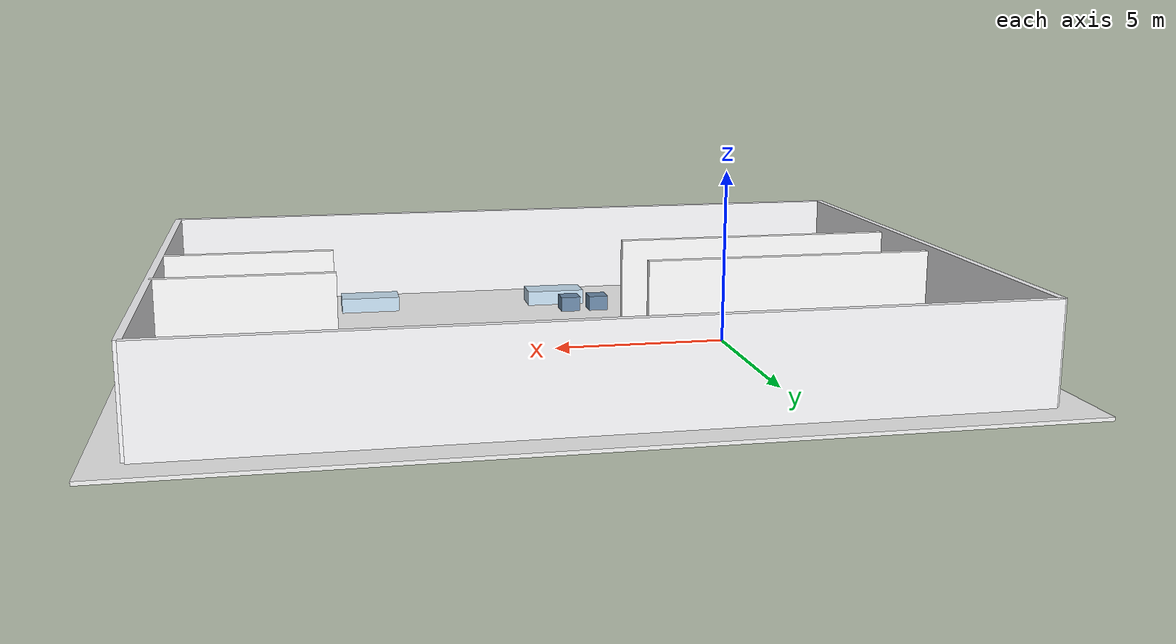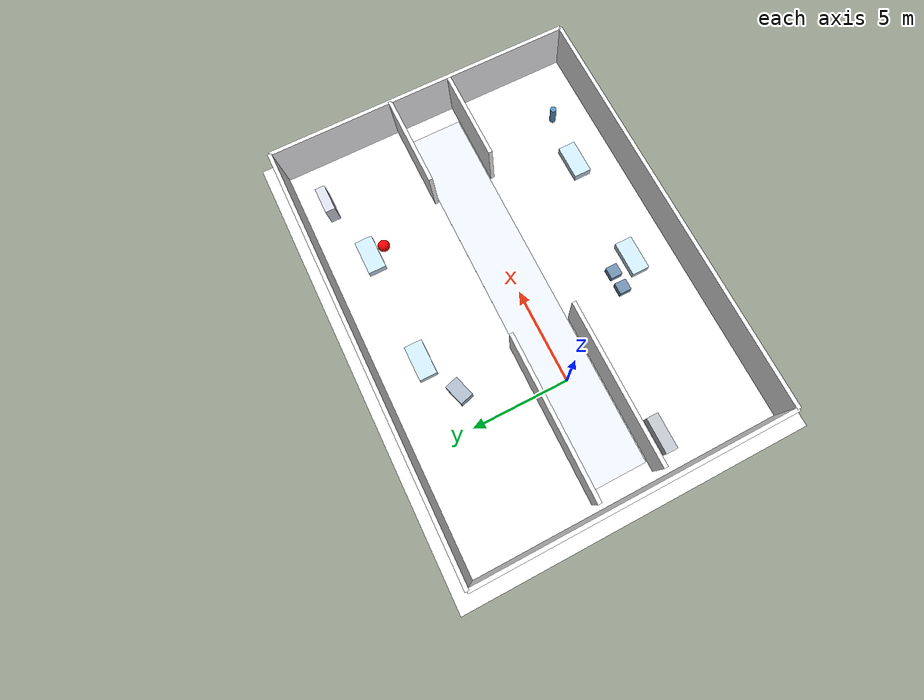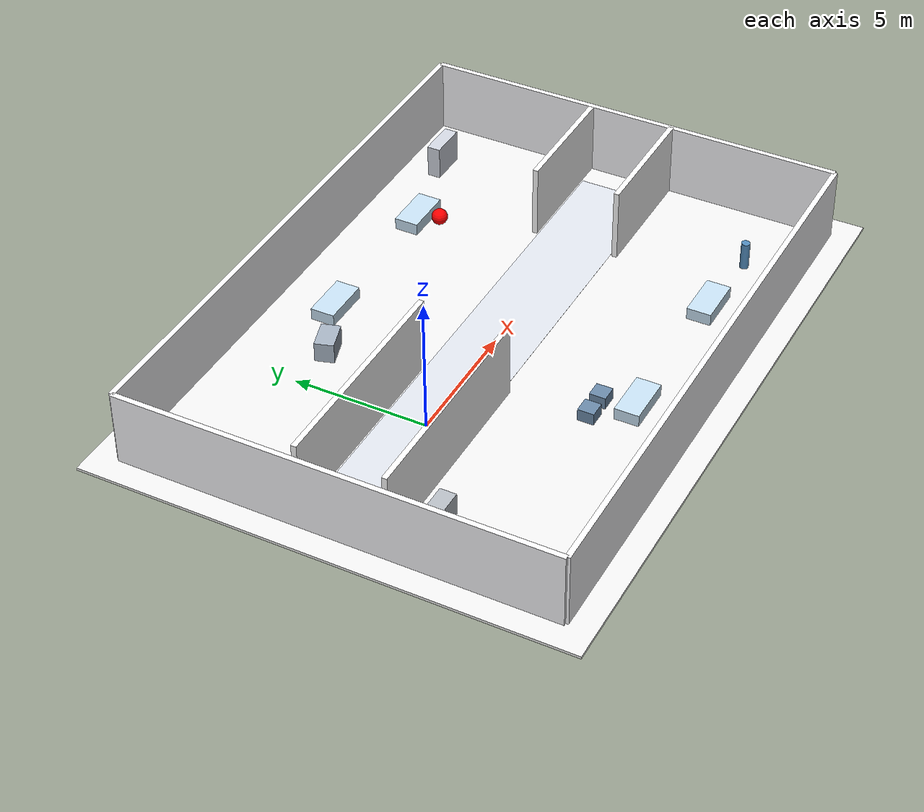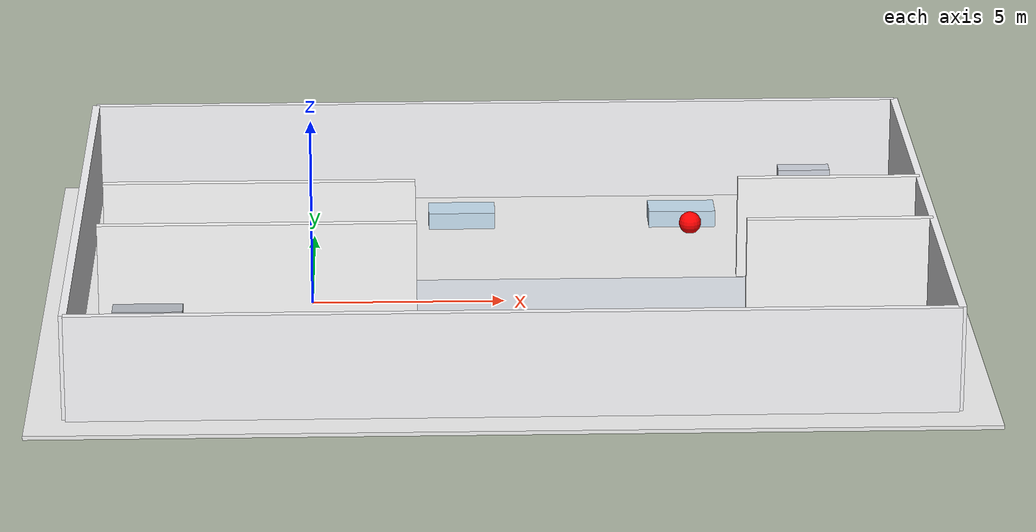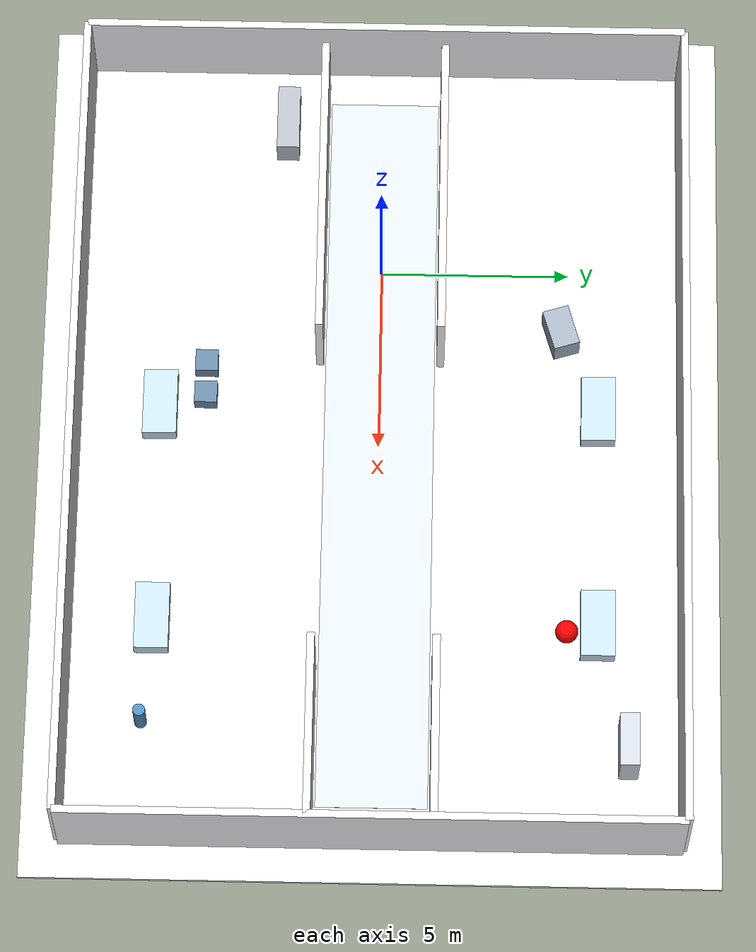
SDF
<?xml version="1.0"?>
<sdf version="1.9">
  <world name="hospital">

    <plugin
      filename="gz-sim-physics-system"
      name="gz::sim::systems::Physics"/>
    <plugin
      filename="gz-sim-user-commands-system"
      name="gz::sim::systems::UserCommands"/>
    <plugin
      filename="gz-sim-scene-broadcaster-system"
      name="gz::sim::systems::SceneBroadcaster"/>
    <plugin
      filename="gz-sim-sensors-system"
      name="gz::sim::systems::Sensors">
      <render_engine>ogre2</render_engine>
    </plugin>

    <gravity>0 0 -9.81</gravity>

    <scene>
      <ambient>0.72 0.72 0.72 1</ambient>
      <background>0.96 0.97 0.99 1</background>
      <shadows>true</shadows>
    </scene>

    <physics name="default_physics" type="ode">
      <max_step_size>0.001</max_step_size>
      <real_time_factor>1.0</real_time_factor>
      <real_time_update_rate>1000</real_time_update_rate>
    </physics>

    <light type="directional" name="sun">
      <cast_shadows>true</cast_shadows>
      <pose>0 0 12 0 0 0</pose>
      <diffuse>0.95 0.95 0.95 1</diffuse>
      <specular>0.2 0.2 0.2 1</specular>
      <direction>-0.25 0.15 -1</direction>
    </light>

    <model name="hospital_floor">
      <static>true</static>
      <pose>5 0 0 0 0 0</pose>
      <link name="link">
        <collision name="col">
          <geometry>
            <box><size>24 18 0.1</size></box>
          </geometry>
        </collision>
        <visual name="vis">
          <geometry>
            <box><size>24 18 0.1</size></box>
          </geometry>
          <material>
            <ambient>0.92 0.92 0.92 1</ambient>
            <diffuse>0.95 0.95 0.95 1</diffuse>
          </material>
        </visual>
      </link>
    </model>

    <model name="corridor_strip">
      <static>true</static>
      <pose>5 0 0.051 0 0 0</pose>
      <link name="link">
        <visual name="vis">
          <geometry>
            <box><size>20 2.9 0.01</size></box>
          </geometry>
          <material>
            <ambient>0.88 0.90 0.93 1</ambient>
            <diffuse>0.88 0.90 0.93 1</diffuse>
          </material>
        </visual>
      </link>
    </model>

    <!-- Outer shell -->
    <model name="wall_west"><static>true</static><pose>-6 0 1.4 0 0 0</pose>
      <link name="link"><collision name="c"><geometry><box><size>0.2 16 2.8</size></box></geometry></collision>
      <visual name="v"><geometry><box><size>0.2 16 2.8</size></box></geometry><material><ambient>0.98 0.98 0.99 1</ambient><diffuse>0.98 0.98 0.99 1</diffuse></material></visual></link>
    </model>
    <model name="wall_east"><static>true</static><pose>16 0 1.4 0 0 0</pose>
      <link name="link"><collision name="c"><geometry><box><size>0.2 16 2.8</size></box></geometry></collision>
      <visual name="v"><geometry><box><size>0.2 16 2.8</size></box></geometry><material><ambient>0.98 0.98 0.99 1</ambient><diffuse>0.98 0.98 0.99 1</diffuse></material></visual></link>
    </model>
    <model name="wall_north"><static>true</static><pose>5 8 1.4 0 0 0</pose>
      <link name="link"><collision name="c"><geometry><box><size>22 0.2 2.8</size></box></geometry></collision>
      <visual name="v"><geometry><box><size>22 0.2 2.8</size></box></geometry><material><ambient>0.98 0.98 0.99 1</ambient><diffuse>0.98 0.98 0.99 1</diffuse></material></visual></link>
    </model>
    <model name="wall_south"><static>true</static><pose>5 -8 1.4 0 0 0</pose>
      <link name="link"><collision name="c"><geometry><box><size>22 0.2 2.8</size></box></geometry></collision>
      <visual name="v"><geometry><box><size>22 0.2 2.8</size></box></geometry><material><ambient>0.98 0.98 0.99 1</ambient><diffuse>0.98 0.98 0.99 1</diffuse></material></visual></link>
    </model>

    <!-- Corridor north wall with wide door gaps at x=4 and x=10 -->
    <model name="north_seg_1"><static>true</static><pose>-1.4 1.6 1.4 0 0 0</pose>
      <link name="link"><collision name="c"><geometry><box><size>8.2 0.2 2.8</size></box></geometry></collision>
      <visual name="v"><geometry><box><size>8.2 0.2 2.8</size></box></geometry><material><ambient>1 1 1 1</ambient><diffuse>1 1 1 1</diffuse></material></visual></link>
    </model>
    <model name="north_seg_3"><static>true</static><pose>13.6 1.6 1.4 0 0 0</pose>
      <link name="link"><collision name="c"><geometry><box><size>4.8 0.2 2.8</size></box></geometry></collision>
      <visual name="v"><geometry><box><size>4.8 0.2 2.8</size></box></geometry><material><ambient>1 1 1 1</ambient><diffuse>1 1 1 1</diffuse></material></visual></link>
    </model>

    <!-- Corridor south wall with wide door gaps at x=4 and x=10 -->
    <model name="south_seg_1"><static>true</static><pose>-1.4 -1.6 1.4 0 0 0</pose>
      <link name="link"><collision name="c"><geometry><box><size>8.2 0.2 2.8</size></box></geometry></collision>
      <visual name="v"><geometry><box><size>8.2 0.2 2.8</size></box></geometry><material><ambient>1 1 1 1</ambient><diffuse>1 1 1 1</diffuse></material></visual></link>
    </model>
    <model name="south_seg_3"><static>true</static><pose>13.6 -1.6 1.4 0 0 0</pose>
      <link name="link"><collision name="c"><geometry><box><size>4.8 0.2 2.8</size></box></geometry></collision>
      <visual name="v"><geometry><box><size>4.8 0.2 2.8</size></box></geometry><material><ambient>1 1 1 1</ambient><diffuse>1 1 1 1</diffuse></material></visual></link>
    </model>

    <!-- Room separators removed to merge 4 rooms into 2 larger rooms -->

    <!-- Basic hospital furniture (visual realism) -->
    <model name="bed_n1"><static>true</static><pose>4.0 5.8 0.25 0 0 0</pose>
      <link name="link">
        <collision name="c"><geometry><box><size>1.8 0.9 0.5</size></box></geometry></collision>
        <visual name="v"><geometry><box><size>1.8 0.9 0.5</size></box></geometry><material><ambient>0.78 0.88 0.95 1</ambient><diffuse>0.78 0.88 0.95 1</diffuse></material></visual>
      </link>
    </model>
    <model name="bed_n2"><static>true</static><pose>10.0 5.8 0.25 0 0 0</pose>
      <link name="link">
        <collision name="c"><geometry><box><size>1.8 0.9 0.5</size></box></geometry></collision>
        <visual name="v"><geometry><box><size>1.8 0.9 0.5</size></box></geometry><material><ambient>0.78 0.88 0.95 1</ambient><diffuse>0.78 0.88 0.95 1</diffuse></material></visual>
      </link>
    </model>
    <model name="bed_s1"><static>true</static><pose>4.0 -5.8 0.25 0 0 0</pose>
      <link name="link">
        <collision name="c"><geometry><box><size>1.8 0.9 0.5</size></box></geometry></collision>
        <visual name="v"><geometry><box><size>1.8 0.9 0.5</size></box></geometry><material><ambient>0.78 0.88 0.95 1</ambient><diffuse>0.78 0.88 0.95 1</diffuse></material></visual>
      </link>
    </model>
    <model name="bed_s2"><static>true</static><pose>10.0 -5.8 0.25 0 0 0</pose>
      <link name="link">
        <collision name="c"><geometry><box><size>1.8 0.9 0.5</size></box></geometry></collision>
        <visual name="v"><geometry><box><size>1.8 0.9 0.5</size></box></geometry><material><ambient>0.78 0.88 0.95 1</ambient><diffuse>0.78 0.88 0.95 1</diffuse></material></visual>
      </link>
    </model>

    <model name="nurse_desk"><static>true</static><pose>-4.2 -2.6 0.45 0 0 0</pose>
      <link name="link">
        <collision name="c"><geometry><box><size>1.8 0.6 0.9</size></box></geometry></collision>
        <visual name="v"><geometry><box><size>1.8 0.6 0.9</size></box></geometry><material><ambient>0.72 0.74 0.77 1</ambient><diffuse>0.72 0.74 0.77 1</diffuse></material></visual>
      </link>
    </model>

    <!-- Additional objects in larger rooms -->
    <model name="supply_cart_north"><static>true</static><pose>1.8 4.8 0.4 0 0 0.3</pose>
      <link name="link">
        <collision name="c"><geometry><box><size>1.1 0.7 0.8</size></box></geometry></collision>
        <visual name="v"><geometry><box><size>1.1 0.7 0.8</size></box></geometry><material><ambient>0.65 0.70 0.76 1</ambient><diffuse>0.65 0.70 0.76 1</diffuse></material></visual>
      </link>
    </model>

    <model name="cabinet_north"><static>true</static><pose>13.4 6.6 0.65 0 0 0</pose>
      <link name="link">
        <collision name="c"><geometry><box><size>1.4 0.5 1.3</size></box></geometry></collision>
        <visual name="v"><geometry><box><size>1.4 0.5 1.3</size></box></geometry><material><ambient>0.82 0.84 0.88 1</ambient><diffuse>0.82 0.84 0.88 1</diffuse></material></visual>
      </link>
    </model>

    <model name="waiting_chair_south_1"><static>true</static><pose>2.8 -4.6 0.25 0 0 0</pose>
      <link name="link">
        <collision name="c"><geometry><box><size>0.6 0.6 0.5</size></box></geometry></collision>
        <visual name="v"><geometry><box><size>0.6 0.6 0.5</size></box></geometry><material><ambient>0.42 0.54 0.66 1</ambient><diffuse>0.42 0.54 0.66 1</diffuse></material></visual>
      </link>
    </model>

    <model name="waiting_chair_south_2"><static>true</static><pose>3.7 -4.6 0.25 0 0 0</pose>
      <link name="link">
        <collision name="c"><geometry><box><size>0.6 0.6 0.5</size></box></geometry></collision>
        <visual name="v"><geometry><box><size>0.6 0.6 0.5</size></box></geometry><material><ambient>0.42 0.54 0.66 1</ambient><diffuse>0.42 0.54 0.66 1</diffuse></material></visual>
      </link>
    </model>

    <model name="oxygen_tank_south"><static>true</static><pose>12.8 -6.0 0.55 0 0 0</pose>
      <link name="link">
        <collision name="c"><geometry><cylinder><radius>0.16</radius><length>1.1</length></cylinder></geometry></collision>
        <visual name="v"><geometry><cylinder><radius>0.16</radius><length>1.1</length></cylinder></geometry><material><ambient>0.32 0.55 0.74 1</ambient><diffuse>0.32 0.55 0.74 1</diffuse></material></visual>
      </link>
    </model>

    <!-- Target sphere in forward room -->
    <light type="point" name="sphere_light">
      <pose>10.2 5.0 2.0 0 0 0</pose>
      <diffuse>1 0.8 0.8 1</diffuse>
      <specular>0.2 0.2 0.2 1</specular>
      <attenuation>
        <range>12</range>
        <constant>0.7</constant>
        <linear>0.02</linear>
        <quadratic>0.001</quadratic>
      </attenuation>
      <cast_shadows>false</cast_shadows>
    </light>

    <model name="red_sphere">
      <static>true</static>
      <pose>10.2 5.0 0.3 0 0 0</pose>
      <link name="link">
        <collision name="collision">
          <geometry><sphere><radius>0.3</radius></sphere></geometry>
        </collision>
        <visual name="visual">
          <geometry><sphere><radius>0.3</radius></sphere></geometry>
          <material>
            <ambient>1 0 0 1</ambient>
            <diffuse>1 0 0 1</diffuse>
            <specular>0.4 0.1 0.1 1</specular>
          </material>
        </visual>
      </link>
    </model>

  </world>
</sdf>
